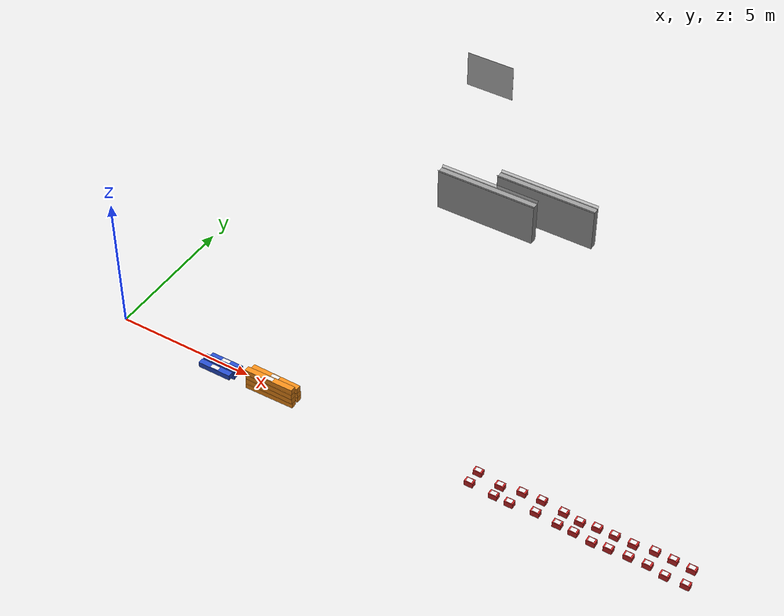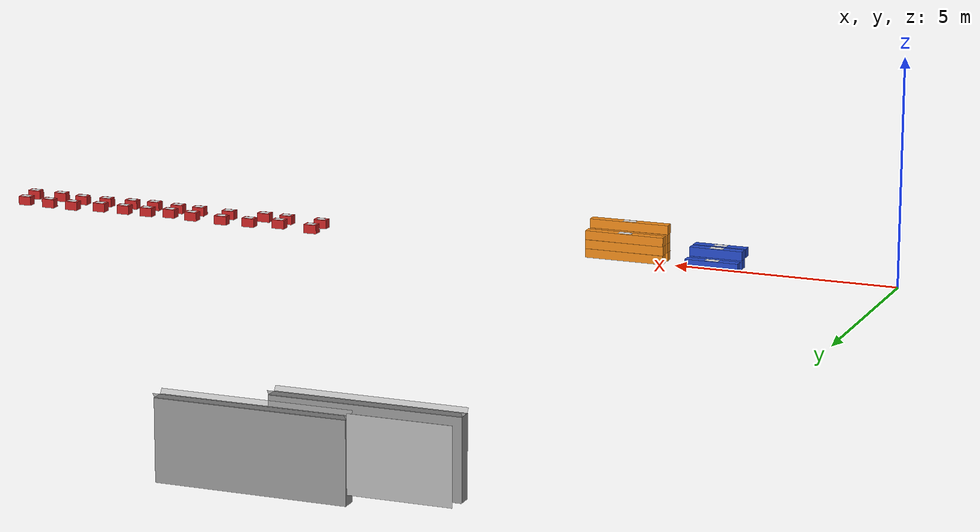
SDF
<sdf version="1.6">
 <world name="default">
  <model name="brick_blue_30">
   <static>1</static>
   <link name="link">
    <pose>0 0 0.1 0 -0 0</pose>
    <inertial>
     <mass>1.5</mass>
     <inertia>
      <ixx>0.00252984</ixx>
      <ixy>0</ixy>
      <ixz>0</ixz>
      <iyy>0.046802</iyy>
      <iyz>0</iyz>
      <izz>0.046802</izz>
     </inertia>
    </inertial>
    <visual name="main_box">
     <geometry><box><size>1.2 0.2 0.2</size></box></geometry>
     <material>
      <script><uri>file://media/materials/scripts/gazebo.material</uri><name>Gazebo/Blue</name></script>
     </material>
    </visual>
    <visual name="white_plate">
     <pose>0 0 0.1 0 -0 0</pose>
     <geometry><box><size>0.3 0.15 0.006</size></box></geometry>
     <material>
      <script><uri>file://media/materials/scripts/gazebo.material</uri><name>Gazebo/White</name></script>
     </material>
    </visual>
    <collision name="collision"><geometry><box><size>1.2 0.2 0.2</size></box></geometry></collision>
   </link>
   <pose>4.15925 -0.002355 0 0 -0 0.003169</pose>
  </model>
  <model name="brick_blue_31">
   <static>1</static>
   <link name="link">
    <pose>0 0 0.1 0 -0 0</pose>
    <inertial>
     <mass>1.5</mass>
     <inertia>
      <ixx>0.00252984</ixx>
      <ixy>0</ixy>
      <ixz>0</ixz>
      <iyy>0.046802</iyy>
      <iyz>0</iyz>
      <izz>0.046802</izz>
     </inertia>
    </inertial>
    <visual name="main_box">
     <geometry><box><size>1.2 0.2 0.2</size></box></geometry>
     <material>
      <script><uri>file://media/materials/scripts/gazebo.material</uri><name>Gazebo/Blue</name></script>
     </material>
    </visual>
    <visual name="white_plate">
     <pose>0 0 0.1 0 -0 0</pose>
     <geometry><box><size>0.3 0.15 0.006</size></box></geometry>
     <material>
      <script><uri>file://media/materials/scripts/gazebo.material</uri><name>Gazebo/White</name></script>
     </material>
    </visual>
    <collision name="collision"><geometry><box><size>1.2 0.2 0.2</size></box></geometry></collision>
   </link>
   <pose>4.15925 -0.317438 0 0 -0 0.012274</pose>
  </model>
  <model name="brick_blue_32">
   <static>1</static>
   <link name="link">
    <pose>0 0 0.1 0 -0 0</pose>
    <inertial>
     <mass>1.5</mass>
     <inertia>
      <ixx>0.00252984</ixx>
      <ixy>0</ixy>
      <ixz>0</ixz>
      <iyy>0.046802</iyy>
      <iyz>0</iyz>
      <izz>0.046802</izz>
     </inertia>
    </inertial>
    <visual name="main_box">
     <geometry><box><size>1.2 0.2 0.2</size></box></geometry>
     <material>
      <script><uri>file://media/materials/scripts/gazebo.material</uri><name>Gazebo/Blue</name></script>
     </material>
    </visual>
    <visual name="white_plate">
     <pose>0 0 0.1 0 -0 0</pose>
     <geometry><box><size>0.3 0.15 0.006</size></box></geometry>
     <material>
      <script><uri>file://media/materials/scripts/gazebo.material</uri><name>Gazebo/White</name></script>
     </material>
    </visual>
    <collision name="collision"><geometry><box><size>1.2 0.2 0.2</size></box></geometry></collision>
   </link>
   <pose>4.15925 -0.310888 0.202 0 0 -0.005419</pose>
  </model>
  <model name="brick_blue_34">
   <static>1</static>
   <link name="link">
    <pose>0 0 0.1 0 -0 0</pose>
    <inertial>
     <mass>1.5</mass>
     <inertia>
      <ixx>0.00252984</ixx>
      <ixy>0</ixy>
      <ixz>0</ixz>
      <iyy>0.046802</iyy>
      <iyz>0</iyz>
      <izz>0.046802</izz>
     </inertia>
    </inertial>
    <visual name="main_box">
     <geometry><box><size>1.2 0.2 0.2</size></box></geometry>
     <material>
      <script><uri>file://media/materials/scripts/gazebo.material</uri><name>Gazebo/Blue</name></script>
     </material>
    </visual>
    <visual name="white_plate">
     <pose>0 0 0.1 0 -0 0</pose>
     <geometry><box><size>0.3 0.15 0.006</size></box></geometry>
     <material>
      <script><uri>file://media/materials/scripts/gazebo.material</uri><name>Gazebo/White</name></script>
     </material>
    </visual>
    <collision name="collision"><geometry><box><size>1.2 0.2 0.2</size></box></geometry></collision>
   </link>
   <pose>4.15925 -0.575449 0.202 0 0 -0.001274</pose>
  </model>
  <model name="brick_orange_35">
   <static>1</static>
   <link name="link">
    <pose>0 0 0.1 0 -0 0</pose>
    <inertial>
     <mass>2</mass>
     <inertia>
      <ixx>0.00252984</ixx>
      <ixy>0</ixy>
      <ixz>0</ixz>
      <iyy>0.046802</iyy>
      <iyz>0</iyz>
      <izz>0.046802</izz>
     </inertia>
    </inertial>
    <visual name="main_box">
     <geometry><box><size>1.8 0.2 0.2</size></box></geometry>
     <material>
      <script><uri>file://media/materials/scripts/gazebo.material</uri><name>Gazebo/Orange</name></script>
     </material>
    </visual>
    <visual name="white_plate">
     <pose>0 0 0.1 0 -0 0</pose>
     <geometry><box><size>0.3 0.15 0.006</size></box></geometry>
     <material>
      <script><uri>file://media/materials/scripts/gazebo.material</uri><name>Gazebo/White</name></script>
     </material>
    </visual>
    <collision name="collision"><geometry><box><size>1.8 0.2 0.2</size></box></geometry></collision>
   </link>
   <pose>6.18963 -0.075045 0 0 0 -0.00406</pose>
  </model>
  <model name="brick_orange_36">
   <static>1</static>
   <link name="link">
    <pose>0 0 0.1 0 -0 0</pose>
    <inertial>
     <mass>2</mass>
     <inertia>
      <ixx>0.00252984</ixx>
      <ixy>0</ixy>
      <ixz>0</ixz>
      <iyy>0.046802</iyy>
      <iyz>0</iyz>
      <izz>0.046802</izz>
     </inertia>
    </inertial>
    <visual name="main_box">
     <geometry><box><size>1.8 0.2 0.2</size></box></geometry>
     <material>
      <script><uri>file://media/materials/scripts/gazebo.material</uri><name>Gazebo/Orange</name></script>
     </material>
    </visual>
    <visual name="white_plate">
     <pose>0 0 0.1 0 -0 0</pose>
     <geometry><box><size>0.3 0.15 0.006</size></box></geometry>
     <material>
      <script><uri>file://media/materials/scripts/gazebo.material</uri><name>Gazebo/White</name></script>
     </material>
    </visual>
    <collision name="collision"><geometry><box><size>1.8 0.2 0.2</size></box></geometry></collision>
   </link>
   <pose>6.18963 -0.075045 0.202 0 0 -0.001928</pose>
  </model>
  <model name="brick_orange_37">
   <static>1</static>
   <link name="link">
    <pose>0 0 0.1 0 -0 0</pose>
    <inertial>
     <mass>2</mass>
     <inertia>
      <ixx>0.00252984</ixx>
      <ixy>0</ixy>
      <ixz>0</ixz>
      <iyy>0.046802</iyy>
      <iyz>0</iyz>
      <izz>0.046802</izz>
     </inertia>
    </inertial>
    <visual name="main_box">
     <geometry><box><size>1.8 0.2 0.2</size></box></geometry>
     <material>
      <script><uri>file://media/materials/scripts/gazebo.material</uri><name>Gazebo/Orange</name></script>
     </material>
    </visual>
    <visual name="white_plate">
     <pose>0 0 0.1 0 -0 0</pose>
     <geometry><box><size>0.3 0.15 0.006</size></box></geometry>
     <material>
      <script><uri>file://media/materials/scripts/gazebo.material</uri><name>Gazebo/White</name></script>
     </material>
    </visual>
    <collision name="collision"><geometry><box><size>1.8 0.2 0.2</size></box></geometry></collision>
   </link>
   <pose>6.18963 -0.075045 0.404 0 0 -0.013869</pose>
  </model>
  <model name="brick_orange_38">
   <static>1</static>
   <link name="link">
    <pose>0 0 0.1 0 -0 0</pose>
    <inertial>
     <mass>2</mass>
     <inertia>
      <ixx>0.00252984</ixx>
      <ixy>0</ixy>
      <ixz>0</ixz>
      <iyy>0.046802</iyy>
      <iyz>0</iyz>
      <izz>0.046802</izz>
     </inertia>
    </inertial>
    <visual name="main_box">
     <geometry><box><size>1.8 0.2 0.2</size></box></geometry>
     <material>
      <script><uri>file://media/materials/scripts/gazebo.material</uri><name>Gazebo/Orange</name></script>
     </material>
    </visual>
    <visual name="white_plate">
     <pose>0 0 0.1 0 -0 0</pose>
     <geometry><box><size>0.3 0.15 0.006</size></box></geometry>
     <material>
      <script><uri>file://media/materials/scripts/gazebo.material</uri><name>Gazebo/White</name></script>
     </material>
    </visual>
    <collision name="collision"><geometry><box><size>1.8 0.2 0.2</size></box></geometry></collision>
   </link>
   <pose>6.18963 -0.392248 -0 0 -0 0.013414</pose>
  </model>
  <model name="brick_orange_39">
   <static>1</static>
   <link name="link">
    <pose>0 0 0.1 0 -0 0</pose>
    <inertial>
     <mass>2</mass>
     <inertia>
      <ixx>0.00252984</ixx>
      <ixy>0</ixy>
      <ixz>0</ixz>
      <iyy>0.046802</iyy>
      <iyz>0</iyz>
      <izz>0.046802</izz>
     </inertia>
    </inertial>
    <visual name="main_box">
     <geometry><box><size>1.8 0.2 0.2</size></box></geometry>
     <material>
      <script><uri>file://media/materials/scripts/gazebo.material</uri><name>Gazebo/Orange</name></script>
     </material>
    </visual>
    <visual name="white_plate">
     <pose>0 0 0.1 0 -0 0</pose>
     <geometry><box><size>0.3 0.15 0.006</size></box></geometry>
     <material>
      <script><uri>file://media/materials/scripts/gazebo.material</uri><name>Gazebo/White</name></script>
     </material>
    </visual>
    <collision name="collision"><geometry><box><size>1.8 0.2 0.2</size></box></geometry></collision>
   </link>
   <pose>6.18963 -0.3912 0.202 0 0 -0.009344</pose>
  </model>
  <model name="brick_orange_40">
   <static>1</static>
   <link name="link">
    <pose>0 0 0.1 0 -0 0</pose>
    <inertial>
     <mass>2</mass>
     <inertia>
      <ixx>0.00252984</ixx>
      <ixy>0</ixy>
      <ixz>0</ixz>
      <iyy>0.046802</iyy>
      <iyz>0</iyz>
      <izz>0.046802</izz>
     </inertia>
    </inertial>
    <visual name="main_box">
     <geometry><box><size>1.8 0.2 0.2</size></box></geometry>
     <material>
      <script><uri>file://media/materials/scripts/gazebo.material</uri><name>Gazebo/Orange</name></script>
     </material>
    </visual>
    <visual name="white_plate">
     <pose>0 0 0.1 0 -0 0</pose>
     <geometry><box><size>0.3 0.15 0.006</size></box></geometry>
     <material>
      <script><uri>file://media/materials/scripts/gazebo.material</uri><name>Gazebo/White</name></script>
     </material>
    </visual>
    <collision name="collision"><geometry><box><size>1.8 0.2 0.2</size></box></geometry></collision>
   </link>
   <pose>6.18963 -0.388297 0.404 0 0 -0.013664</pose>
  </model>
  <model name="brick_orange_41">
   <static>1</static>
   <link name="link">
    <pose>0 0 0.1 0 -0 0</pose>
    <inertial>
     <mass>2</mass>
     <inertia>
      <ixx>0.00252984</ixx>
      <ixy>0</ixy>
      <ixz>0</ixz>
      <iyy>0.046802</iyy>
      <iyz>0</iyz>
      <izz>0.046802</izz>
     </inertia>
    </inertial>
    <visual name="main_box">
     <geometry><box><size>1.8 0.2 0.2</size></box></geometry>
     <material>
      <script><uri>file://media/materials/scripts/gazebo.material</uri><name>Gazebo/Orange</name></script>
     </material>
    </visual>
    <visual name="white_plate">
     <pose>0 0 0.1 0 -0 0</pose>
     <geometry><box><size>0.3 0.15 0.006</size></box></geometry>
     <material>
      <script><uri>file://media/materials/scripts/gazebo.material</uri><name>Gazebo/White</name></script>
     </material>
    </visual>
    <collision name="collision"><geometry><box><size>1.8 0.2 0.2</size></box></geometry></collision>
   </link>
   <pose>6.18963 -0.387973 0.606 0 -0 0.01023</pose>
  </model>
  <model name="artificial_wall">
   <static>1</static>
   <link name="link">
    <pose>0 0 0.75 0 -0 0</pose>
    <inertial>
     <mass>0.5167</mass>
     <inertia>
      <ixx>0.000861167</ixx>
      <ixy>0</ixy>
      <ixz>0</ixz>
      <iyy>0.000861167</iyy>
      <iyz>0</iyz>
      <izz>0.000861167</izz>
     </inertia>
    </inertial>
    <collision name="collision">
     <geometry><box><size>2 0.01 1.5</size></box></geometry>
     <surface>
      <contact>
       <poissons_ratio>0.347</poissons_ratio>
       <elastic_modulus>8.8e+09</elastic_modulus>
       <ode><kp>100000</kp><kd>100</kd><max_vel>100</max_vel><min_depth>0.001</min_depth></ode>
      </contact>
      <friction>
       <torsional>
        <coefficient>1</coefficient>
        <use_patch_radius>0</use_patch_radius>
        <surface_radius>0.01</surface_radius>
       </torsional>
      </friction>
     </surface>
    </collision>
    <visual name="visual">
     <geometry><box><size>2 0.01 1.5</size></box></geometry>
     <material>
      <script>
       <uri>model://artificial_wall/scripts</uri>
       <uri>model://artificial_wall/materials/textures</uri>
       <name>ArtificialWall/Image</name>
      </script>
     </material>
    </visual>
   </link>
   <pose>4.15045 17.5798 0 0 -0 0</pose>
  </model>
  <model name="mbzirc_uav_assembly_wall_3">
   <static>1</static>
   <link name="link">
    <pose>0 0 0.85 0 -0 0</pose>
    <collision name="collision_wall"><geometry><box><size>4 0.3 1.7</size></box></geometry></collision>
    <visual name="visual_wall">
     <geometry><box><size>4 0.3 1.7</size></box></geometry>
     <material>
      <script>
       <uri>model://mbzirc_uav_assembly_wall/materials/scripts</uri>
       <uri>model://mbzirc_uav_assembly_wall/materials/textures</uri>
       <name>vrc/grey_wall</name>
      </script>
     </material>
    </visual>
    <visual name="visual_top_plate">
     <pose>0 0 0.85 0 -0 0</pose>
     <geometry><box><size>4 0.3 0.005</size></box></geometry>
     <material>
      <script><name>Gazebo/Grey</name><uri>file://media/materials/scripts/gazebo.material</uri></script>
     </material>
    </visual>
    <collision name="collision_front_channel">
     <pose>0 0.158 0.9 -0.643 0 0</pose>
     <geometry><box><size>4 0.005 0.125</size></box></geometry>
    </collision>
    <visual name="visual_front_channel">
     <pose>0 0.158 0.9 -0.643 0 0</pose>
     <geometry><box><size>4 0.005 0.125</size></box></geometry>
     <material>
      <script><name>Gazebo/GreyTransparent</name><uri>file://media/materials/scripts/gazebo.material</uri></script>
     </material>
    </visual>
    <collision name="collision_back_channel">
     <pose>0 -0.158 0.9 0.643 -0 0</pose>
     <geometry><box><size>4 0.005 0.125</size></box></geometry>
    </collision>
    <visual name="visual_back_channel">
     <pose>0 -0.158 0.9 0.643 -0 0</pose>
     <geometry><box><size>4 0.005 0.125</size></box></geometry>
     <material>
      <script><name>Gazebo/GreyTransparent</name><uri>file://media/materials/scripts/gazebo.material</uri></script>
     </material>
    </visual>
   </link>
   <pose>8.95965 13.3483 -1.67233 0 -0 0</pose>
  </model>
  <model name="mbzirc_uav_assembly_wall_4">
   <static>1</static>
   <link name="link">
    <pose>0 0 0.85 0 -0 0</pose>
    <collision name="collision_wall"><geometry><box><size>4 0.3 1.7</size></box></geometry></collision>
    <visual name="visual_wall">
     <geometry><box><size>4 0.3 1.7</size></box></geometry>
     <material>
      <script>
       <uri>model://mbzirc_uav_assembly_wall/materials/scripts</uri>
       <uri>model://mbzirc_uav_assembly_wall/materials/textures</uri>
       <name>vrc/grey_wall</name>
      </script>
     </material>
    </visual>
    <visual name="visual_top_plate">
     <pose>0 0 0.85 0 -0 0</pose>
     <geometry><box><size>4 0.3 0.005</size></box></geometry>
     <material>
      <script><name>Gazebo/Grey</name><uri>file://media/materials/scripts/gazebo.material</uri></script>
     </material>
    </visual>
    <collision name="collision_front_channel">
     <pose>0 0.158 0.9 -0.643 0 0</pose>
     <geometry><box><size>4 0.005 0.125</size></box></geometry>
    </collision>
    <visual name="visual_front_channel">
     <pose>0 0.158 0.9 -0.643 0 0</pose>
     <geometry><box><size>4 0.005 0.125</size></box></geometry>
     <material>
      <script><name>Gazebo/GreyTransparent</name><uri>file://media/materials/scripts/gazebo.material</uri></script>
     </material>
    </visual>
    <collision name="collision_back_channel">
     <pose>0 -0.158 0.9 0.643 -0 0</pose>
     <geometry><box><size>4 0.005 0.125</size></box></geometry>
    </collision>
    <visual name="visual_back_channel">
     <pose>0 -0.158 0.9 0.643 -0 0</pose>
     <geometry><box><size>4 0.005 0.125</size></box></geometry>
     <material>
      <script><name>Gazebo/GreyTransparent</name><uri>file://media/materials/scripts/gazebo.material</uri></script>
     </material>
    </visual>
   </link>
   <pose>6.9734 12.4316 -1.64477 0 -0 0</pose>
  </model>
  <model name="mbzirc_red_brick">
   <static>0</static>
   <link name="link">
    <pose>0 0 0.1 0 -0 0</pose>
    <inertial>
     <mass>0.7</mass>
     <inertia>
      <ixx>0.004648</ixx>
      <ixy>0</ixy>
      <ixz>0</ixz>
      <iyy>0.007553</iyy>
      <iyz>0</iyz>
      <izz>0.007553</izz>
     </inertia>
    </inertial>
    <visual name="main_box">
     <geometry><box><size>0.3 0.2 0.2</size></box></geometry>
     <material>
      <script><uri>file://media/materials/scripts/gazebo.material</uri><name>Gazebo/Red</name></script>
     </material>
    </visual>
    <visual name="white_plate">
     <pose>0 0 0.1 0 -0 0</pose>
     <geometry><box><size>0.2 0.15 0.006</size></box></geometry>
     <material>
      <script><uri>file://media/materials/scripts/gazebo.material</uri><name>Gazebo/White</name></script>
     </material>
    </visual>
    <collision name="collision"><geometry><box><size>0.3 0.2 0.2</size></box></geometry></collision>
   </link>
   <pose>20.9271 -0.404197 0 0.000114 -6e-06 3e-06</pose>
  </model>
  <model name="mbzirc_red_brick_0">
   <static>0</static>
   <link name="link">
    <pose>0 0 0.1 0 -0 0</pose>
    <inertial>
     <mass>0.7</mass>
     <inertia>
      <ixx>0.004648</ixx>
      <ixy>0</ixy>
      <ixz>0</ixz>
      <iyy>0.007553</iyy>
      <iyz>0</iyz>
      <izz>0.007553</izz>
     </inertia>
    </inertial>
    <visual name="main_box">
     <geometry><box><size>0.3 0.2 0.2</size></box></geometry>
     <material>
      <script><uri>file://media/materials/scripts/gazebo.material</uri><name>Gazebo/Red</name></script>
     </material>
    </visual>
    <visual name="white_plate">
     <pose>0 0 0.1 0 -0 0</pose>
     <geometry><box><size>0.2 0.15 0.006</size></box></geometry>
     <material>
      <script><uri>file://media/materials/scripts/gazebo.material</uri><name>Gazebo/White</name></script>
     </material>
    </visual>
    <collision name="collision"><geometry><box><size>0.3 0.2 0.2</size></box></geometry></collision>
   </link>
   <pose>13.5604 -0.287668 -5.4e-05 0.0005 -3e-06 0</pose>
  </model>
  <model name="mbzirc_red_brick_1">
   <static>0</static>
   <link name="link">
    <pose>0 0 0.1 0 -0 0</pose>
    <inertial>
     <mass>0.7</mass>
     <inertia>
      <ixx>0.004648</ixx>
      <ixy>0</ixy>
      <ixz>0</ixz>
      <iyy>0.007553</iyy>
      <iyz>0</iyz>
      <izz>0.007553</izz>
     </inertia>
    </inertial>
    <visual name="main_box">
     <geometry><box><size>0.3 0.2 0.2</size></box></geometry>
     <material>
      <script><uri>file://media/materials/scripts/gazebo.material</uri><name>Gazebo/Red</name></script>
     </material>
    </visual>
    <visual name="white_plate">
     <pose>0 0 0.1 0 -0 0</pose>
     <geometry><box><size>0.2 0.15 0.006</size></box></geometry>
     <material>
      <script><uri>file://media/materials/scripts/gazebo.material</uri><name>Gazebo/White</name></script>
     </material>
    </visual>
    <collision name="collision"><geometry><box><size>0.3 0.2 0.2</size></box></geometry></collision>
   </link>
   <pose>19.6472 -0.316008 0 0.000114 -6e-06 3e-06</pose>
  </model>
  <model name="mbzirc_red_brick_2">
   <static>0</static>
   <link name="link">
    <pose>0 0 0.1 0 -0 0</pose>
    <inertial>
     <mass>0.7</mass>
     <inertia>
      <ixx>0.004648</ixx>
      <ixy>0</ixy>
      <ixz>0</ixz>
      <iyy>0.007553</iyy>
      <iyz>0</iyz>
      <izz>0.007553</izz>
     </inertia>
    </inertial>
    <visual name="main_box">
     <geometry><box><size>0.3 0.2 0.2</size></box></geometry>
     <material>
      <script><uri>file://media/materials/scripts/gazebo.material</uri><name>Gazebo/Red</name></script>
     </material>
    </visual>
    <visual name="white_plate">
     <pose>0 0 0.1 0 -0 0</pose>
     <geometry><box><size>0.2 0.15 0.006</size></box></geometry>
     <material>
      <script><uri>file://media/materials/scripts/gazebo.material</uri><name>Gazebo/White</name></script>
     </material>
    </visual>
    <collision name="collision"><geometry><box><size>0.3 0.2 0.2</size></box></geometry></collision>
   </link>
   <pose>20.2525 -0.416958 0 -0.000114 -6e-06 -2e-06</pose>
  </model>
  <model name="mbzirc_red_brick_3">
   <static>0</static>
   <link name="link">
    <pose>0 0 0.1 0 -0 0</pose>
    <inertial>
     <mass>0.7</mass>
     <inertia>
      <ixx>0.004648</ixx>
      <ixy>0</ixy>
      <ixz>0</ixz>
      <iyy>0.007553</iyy>
      <iyz>0</iyz>
      <izz>0.007553</izz>
     </inertia>
    </inertial>
    <visual name="main_box">
     <geometry><box><size>0.3 0.2 0.2</size></box></geometry>
     <material>
      <script><uri>file://media/materials/scripts/gazebo.material</uri><name>Gazebo/Red</name></script>
     </material>
    </visual>
    <visual name="white_plate">
     <pose>0 0 0.1 0 -0 0</pose>
     <geometry><box><size>0.2 0.15 0.006</size></box></geometry>
     <material>
      <script><uri>file://media/materials/scripts/gazebo.material</uri><name>Gazebo/White</name></script>
     </material>
    </visual>
    <collision name="collision"><geometry><box><size>0.3 0.2 0.2</size></box></geometry></collision>
   </link>
   <pose>19.0268 -0.32892 -5.4e-05 0.0005 -3e-06 0</pose>
  </model>
  <model name="mbzirc_red_brick_4">
   <static>0</static>
   <link name="link">
    <pose>0 0 0.1 0 -0 0</pose>
    <inertial>
     <mass>0.7</mass>
     <inertia>
      <ixx>0.004648</ixx>
      <ixy>0</ixy>
      <ixz>0</ixz>
      <iyy>0.007553</iyy>
      <iyz>0</iyz>
      <izz>0.007553</izz>
     </inertia>
    </inertial>
    <visual name="main_box">
     <geometry><box><size>0.3 0.2 0.2</size></box></geometry>
     <material>
      <script><uri>file://media/materials/scripts/gazebo.material</uri><name>Gazebo/Red</name></script>
     </material>
    </visual>
    <visual name="white_plate">
     <pose>0 0 0.1 0 -0 0</pose>
     <geometry><box><size>0.2 0.15 0.006</size></box></geometry>
     <material>
      <script><uri>file://media/materials/scripts/gazebo.material</uri><name>Gazebo/White</name></script>
     </material>
    </visual>
    <collision name="collision"><geometry><box><size>0.3 0.2 0.2</size></box></geometry></collision>
   </link>
   <pose>18.3857 -0.37056 -5.4e-05 -0.0005 -3e-06 1e-06</pose>
  </model>
  <model name="mbzirc_red_brick_5">
   <static>0</static>
   <link name="link">
    <pose>0 0 0.1 0 -0 0</pose>
    <inertial>
     <mass>0.7</mass>
     <inertia>
      <ixx>0.004648</ixx>
      <ixy>0</ixy>
      <ixz>0</ixz>
      <iyy>0.007553</iyy>
      <iyz>0</iyz>
      <izz>0.007553</izz>
     </inertia>
    </inertial>
    <visual name="main_box">
     <geometry><box><size>0.3 0.2 0.2</size></box></geometry>
     <material>
      <script><uri>file://media/materials/scripts/gazebo.material</uri><name>Gazebo/Red</name></script>
     </material>
    </visual>
    <visual name="white_plate">
     <pose>0 0 0.1 0 -0 0</pose>
     <geometry><box><size>0.2 0.15 0.006</size></box></geometry>
     <material>
      <script><uri>file://media/materials/scripts/gazebo.material</uri><name>Gazebo/White</name></script>
     </material>
    </visual>
    <collision name="collision"><geometry><box><size>0.3 0.2 0.2</size></box></geometry></collision>
   </link>
   <pose>17.8369 -0.416907 0 0.000114 -6e-06 3e-06</pose>
  </model>
  <model name="mbzirc_red_brick_6">
   <static>0</static>
   <link name="link">
    <pose>0 0 0.1 0 -0 0</pose>
    <inertial>
     <mass>0.7</mass>
     <inertia>
      <ixx>0.004648</ixx>
      <ixy>0</ixy>
      <ixz>0</ixz>
      <iyy>0.007553</iyy>
      <iyz>0</iyz>
      <izz>0.007553</izz>
     </inertia>
    </inertial>
    <visual name="main_box">
     <geometry><box><size>0.3 0.2 0.2</size></box></geometry>
     <material>
      <script><uri>file://media/materials/scripts/gazebo.material</uri><name>Gazebo/Red</name></script>
     </material>
    </visual>
    <visual name="white_plate">
     <pose>0 0 0.1 0 -0 0</pose>
     <geometry><box><size>0.2 0.15 0.006</size></box></geometry>
     <material>
      <script><uri>file://media/materials/scripts/gazebo.material</uri><name>Gazebo/White</name></script>
     </material>
    </visual>
    <collision name="collision"><geometry><box><size>0.3 0.2 0.2</size></box></geometry></collision>
   </link>
   <pose>17.202 -0.356728 -5.4e-05 -0.0005 -3e-06 1e-06</pose>
  </model>
  <model name="mbzirc_red_brick_7">
   <static>0</static>
   <link name="link">
    <pose>0 0 0.1 0 -0 0</pose>
    <inertial>
     <mass>0.7</mass>
     <inertia>
      <ixx>0.004648</ixx>
      <ixy>0</ixy>
      <ixz>0</ixz>
      <iyy>0.007553</iyy>
      <iyz>0</iyz>
      <izz>0.007553</izz>
     </inertia>
    </inertial>
    <visual name="main_box">
     <geometry><box><size>0.3 0.2 0.2</size></box></geometry>
     <material>
      <script><uri>file://media/materials/scripts/gazebo.material</uri><name>Gazebo/Red</name></script>
     </material>
    </visual>
    <visual name="white_plate">
     <pose>0 0 0.1 0 -0 0</pose>
     <geometry><box><size>0.2 0.15 0.006</size></box></geometry>
     <material>
      <script><uri>file://media/materials/scripts/gazebo.material</uri><name>Gazebo/White</name></script>
     </material>
    </visual>
    <collision name="collision"><geometry><box><size>0.3 0.2 0.2</size></box></geometry></collision>
   </link>
   <pose>16.6471 -0.335854 -5.4e-05 -0.0005 -3e-06 1e-06</pose>
  </model>
  <model name="mbzirc_red_brick_8">
   <static>0</static>
   <link name="link">
    <pose>0 0 0.1 0 -0 0</pose>
    <inertial>
     <mass>0.7</mass>
     <inertia>
      <ixx>0.004648</ixx>
      <ixy>0</ixy>
      <ixz>0</ixz>
      <iyy>0.007553</iyy>
      <iyz>0</iyz>
      <izz>0.007553</izz>
     </inertia>
    </inertial>
    <visual name="main_box">
     <geometry><box><size>0.3 0.2 0.2</size></box></geometry>
     <material>
      <script><uri>file://media/materials/scripts/gazebo.material</uri><name>Gazebo/Red</name></script>
     </material>
    </visual>
    <visual name="white_plate">
     <pose>0 0 0.1 0 -0 0</pose>
     <geometry><box><size>0.2 0.15 0.006</size></box></geometry>
     <material>
      <script><uri>file://media/materials/scripts/gazebo.material</uri><name>Gazebo/White</name></script>
     </material>
    </visual>
    <collision name="collision"><geometry><box><size>0.3 0.2 0.2</size></box></geometry></collision>
   </link>
   <pose>15.864 -0.27625 0 -0.000114 -6e-06 -2e-06</pose>
  </model>
  <model name="mbzirc_red_brick_9">
   <static>0</static>
   <link name="link">
    <pose>0 0 0.1 0 -0 0</pose>
    <inertial>
     <mass>0.7</mass>
     <inertia>
      <ixx>0.004648</ixx>
      <ixy>0</ixy>
      <ixz>0</ixz>
      <iyy>0.007553</iyy>
      <iyz>0</iyz>
      <izz>0.007553</izz>
     </inertia>
    </inertial>
    <visual name="main_box">
     <geometry><box><size>0.3 0.2 0.2</size></box></geometry>
     <material>
      <script><uri>file://media/materials/scripts/gazebo.material</uri><name>Gazebo/Red</name></script>
     </material>
    </visual>
    <visual name="white_plate">
     <pose>0 0 0.1 0 -0 0</pose>
     <geometry><box><size>0.2 0.15 0.006</size></box></geometry>
     <material>
      <script><uri>file://media/materials/scripts/gazebo.material</uri><name>Gazebo/White</name></script>
     </material>
    </visual>
    <collision name="collision"><geometry><box><size>0.3 0.2 0.2</size></box></geometry></collision>
   </link>
   <pose>15.0077 -0.36417 -5.4e-05 0.0005 -3e-06 0</pose>
  </model>
  <model name="mbzirc_red_brick_10">
   <static>0</static>
   <link name="link">
    <pose>0 0 0.1 0 -0 0</pose>
    <inertial>
     <mass>0.7</mass>
     <inertia>
      <ixx>0.004648</ixx>
      <ixy>0</ixy>
      <ixz>0</ixz>
      <iyy>0.007553</iyy>
      <iyz>0</iyz>
      <izz>0.007553</izz>
     </inertia>
    </inertial>
    <visual name="main_box">
     <geometry><box><size>0.3 0.2 0.2</size></box></geometry>
     <material>
      <script><uri>file://media/materials/scripts/gazebo.material</uri><name>Gazebo/Red</name></script>
     </material>
    </visual>
    <visual name="white_plate">
     <pose>0 0 0.1 0 -0 0</pose>
     <geometry><box><size>0.2 0.15 0.006</size></box></geometry>
     <material>
      <script><uri>file://media/materials/scripts/gazebo.material</uri><name>Gazebo/White</name></script>
     </material>
    </visual>
    <collision name="collision"><geometry><box><size>0.3 0.2 0.2</size></box></geometry></collision>
   </link>
   <pose>14.4466 -0.351061 -5.4e-05 0.0005 -3e-06 0</pose>
  </model>
  <model name="mbzirc_red_brick_11">
   <static>0</static>
   <link name="link">
    <pose>0 0 0.1 0 -0 0</pose>
    <inertial>
     <mass>0.7</mass>
     <inertia>
      <ixx>0.004648</ixx>
      <ixy>0</ixy>
      <ixz>0</ixz>
      <iyy>0.007553</iyy>
      <iyz>0</iyz>
      <izz>0.007553</izz>
     </inertia>
    </inertial>
    <visual name="main_box">
     <geometry><box><size>0.3 0.2 0.2</size></box></geometry>
     <material>
      <script><uri>file://media/materials/scripts/gazebo.material</uri><name>Gazebo/Red</name></script>
     </material>
    </visual>
    <visual name="white_plate">
     <pose>0 0 0.1 0 -0 0</pose>
     <geometry><box><size>0.2 0.15 0.006</size></box></geometry>
     <material>
      <script><uri>file://media/materials/scripts/gazebo.material</uri><name>Gazebo/White</name></script>
     </material>
    </visual>
    <collision name="collision"><geometry><box><size>0.3 0.2 0.2</size></box></geometry></collision>
   </link>
   <pose>20.8407 0.216029 0 0.000114 -6e-06 3e-06</pose>
  </model>
  <model name="mbzirc_red_brick_12">
   <static>0</static>
   <link name="link">
    <pose>0 0 0.1 0 -0 0</pose>
    <inertial>
     <mass>0.7</mass>
     <inertia>
      <ixx>0.004648</ixx>
      <ixy>0</ixy>
      <ixz>0</ixz>
      <iyy>0.007553</iyy>
      <iyz>0</iyz>
      <izz>0.007553</izz>
     </inertia>
    </inertial>
    <visual name="main_box">
     <geometry><box><size>0.3 0.2 0.2</size></box></geometry>
     <material>
      <script><uri>file://media/materials/scripts/gazebo.material</uri><name>Gazebo/Red</name></script>
     </material>
    </visual>
    <visual name="white_plate">
     <pose>0 0 0.1 0 -0 0</pose>
     <geometry><box><size>0.2 0.15 0.006</size></box></geometry>
     <material>
      <script><uri>file://media/materials/scripts/gazebo.material</uri><name>Gazebo/White</name></script>
     </material>
    </visual>
    <collision name="collision"><geometry><box><size>0.3 0.2 0.2</size></box></geometry></collision>
   </link>
   <pose>20.2224 0.245343 0 -0.000114 -6e-06 -2e-06</pose>
  </model>
  <model name="mbzirc_red_brick_13">
   <static>0</static>
   <link name="link">
    <pose>0 0 0.1 0 -0 0</pose>
    <inertial>
     <mass>0.7</mass>
     <inertia>
      <ixx>0.004648</ixx>
      <ixy>0</ixy>
      <ixz>0</ixz>
      <iyy>0.007553</iyy>
      <iyz>0</iyz>
      <izz>0.007553</izz>
     </inertia>
    </inertial>
    <visual name="main_box">
     <geometry><box><size>0.3 0.2 0.2</size></box></geometry>
     <material>
      <script><uri>file://media/materials/scripts/gazebo.material</uri><name>Gazebo/Red</name></script>
     </material>
    </visual>
    <visual name="white_plate">
     <pose>0 0 0.1 0 -0 0</pose>
     <geometry><box><size>0.2 0.15 0.006</size></box></geometry>
     <material>
      <script><uri>file://media/materials/scripts/gazebo.material</uri><name>Gazebo/White</name></script>
     </material>
    </visual>
    <collision name="collision"><geometry><box><size>0.3 0.2 0.2</size></box></geometry></collision>
   </link>
   <pose>19.6143 0.257405 -5.4e-05 -0.0005 -3e-06 1e-06</pose>
  </model>
  <model name="mbzirc_red_brick_14">
   <static>0</static>
   <link name="link">
    <pose>0 0 0.1 0 -0 0</pose>
    <inertial>
     <mass>0.7</mass>
     <inertia>
      <ixx>0.004648</ixx>
      <ixy>0</ixy>
      <ixz>0</ixz>
      <iyy>0.007553</iyy>
      <iyz>0</iyz>
      <izz>0.007553</izz>
     </inertia>
    </inertial>
    <visual name="main_box">
     <geometry><box><size>0.3 0.2 0.2</size></box></geometry>
     <material>
      <script><uri>file://media/materials/scripts/gazebo.material</uri><name>Gazebo/Red</name></script>
     </material>
    </visual>
    <visual name="white_plate">
     <pose>0 0 0.1 0 -0 0</pose>
     <geometry><box><size>0.2 0.15 0.006</size></box></geometry>
     <material>
      <script><uri>file://media/materials/scripts/gazebo.material</uri><name>Gazebo/White</name></script>
     </material>
    </visual>
    <collision name="collision"><geometry><box><size>0.3 0.2 0.2</size></box></geometry></collision>
   </link>
   <pose>18.9436 0.164513 -5.4e-05 -0.0005 -3e-06 1e-06</pose>
  </model>
  <model name="mbzirc_red_brick_15">
   <static>0</static>
   <link name="link">
    <pose>0 0 0.1 0 -0 0</pose>
    <inertial>
     <mass>0.7</mass>
     <inertia>
      <ixx>0.004648</ixx>
      <ixy>0</ixy>
      <ixz>0</ixz>
      <iyy>0.007553</iyy>
      <iyz>0</iyz>
      <izz>0.007553</izz>
     </inertia>
    </inertial>
    <visual name="main_box">
     <geometry><box><size>0.3 0.2 0.2</size></box></geometry>
     <material>
      <script><uri>file://media/materials/scripts/gazebo.material</uri><name>Gazebo/Red</name></script>
     </material>
    </visual>
    <visual name="white_plate">
     <pose>0 0 0.1 0 -0 0</pose>
     <geometry><box><size>0.2 0.15 0.006</size></box></geometry>
     <material>
      <script><uri>file://media/materials/scripts/gazebo.material</uri><name>Gazebo/White</name></script>
     </material>
    </visual>
    <collision name="collision"><geometry><box><size>0.3 0.2 0.2</size></box></geometry></collision>
   </link>
   <pose>18.3231 0.165438 0 -0.000114 -6e-06 -2e-06</pose>
  </model>
  <model name="mbzirc_red_brick_16">
   <static>0</static>
   <link name="link">
    <pose>0 0 0.1 0 -0 0</pose>
    <inertial>
     <mass>0.7</mass>
     <inertia>
      <ixx>0.004648</ixx>
      <ixy>0</ixy>
      <ixz>0</ixz>
      <iyy>0.007553</iyy>
      <iyz>0</iyz>
      <izz>0.007553</izz>
     </inertia>
    </inertial>
    <visual name="main_box">
     <geometry><box><size>0.3 0.2 0.2</size></box></geometry>
     <material>
      <script><uri>file://media/materials/scripts/gazebo.material</uri><name>Gazebo/Red</name></script>
     </material>
    </visual>
    <visual name="white_plate">
     <pose>0 0 0.1 0 -0 0</pose>
     <geometry><box><size>0.2 0.15 0.006</size></box></geometry>
     <material>
      <script><uri>file://media/materials/scripts/gazebo.material</uri><name>Gazebo/White</name></script>
     </material>
    </visual>
    <collision name="collision"><geometry><box><size>0.3 0.2 0.2</size></box></geometry></collision>
   </link>
   <pose>17.7347 0.164944 -5.4e-05 -0.0005 -3e-06 1e-06</pose>
  </model>
  <model name="mbzirc_red_brick_17">
   <static>0</static>
   <link name="link">
    <pose>0 0 0.1 0 -0 0</pose>
    <inertial>
     <mass>0.7</mass>
     <inertia>
      <ixx>0.004648</ixx>
      <ixy>0</ixy>
      <ixz>0</ixz>
      <iyy>0.007553</iyy>
      <iyz>0</iyz>
      <izz>0.007553</izz>
     </inertia>
    </inertial>
    <visual name="main_box">
     <geometry><box><size>0.3 0.2 0.2</size></box></geometry>
     <material>
      <script><uri>file://media/materials/scripts/gazebo.material</uri><name>Gazebo/Red</name></script>
     </material>
    </visual>
    <visual name="white_plate">
     <pose>0 0 0.1 0 -0 0</pose>
     <geometry><box><size>0.2 0.15 0.006</size></box></geometry>
     <material>
      <script><uri>file://media/materials/scripts/gazebo.material</uri><name>Gazebo/White</name></script>
     </material>
    </visual>
    <collision name="collision"><geometry><box><size>0.3 0.2 0.2</size></box></geometry></collision>
   </link>
   <pose>17.1847 0.097572 0 -0.000114 -6e-06 -2e-06</pose>
  </model>
  <model name="mbzirc_red_brick_18">
   <static>0</static>
   <link name="link">
    <pose>0 0 0.1 0 -0 0</pose>
    <inertial>
     <mass>0.7</mass>
     <inertia>
      <ixx>0.004648</ixx>
      <ixy>0</ixy>
      <ixz>0</ixz>
      <iyy>0.007553</iyy>
      <iyz>0</iyz>
      <izz>0.007553</izz>
     </inertia>
    </inertial>
    <visual name="main_box">
     <geometry><box><size>0.3 0.2 0.2</size></box></geometry>
     <material>
      <script><uri>file://media/materials/scripts/gazebo.material</uri><name>Gazebo/Red</name></script>
     </material>
    </visual>
    <visual name="white_plate">
     <pose>0 0 0.1 0 -0 0</pose>
     <geometry><box><size>0.2 0.15 0.006</size></box></geometry>
     <material>
      <script><uri>file://media/materials/scripts/gazebo.material</uri><name>Gazebo/White</name></script>
     </material>
    </visual>
    <collision name="collision"><geometry><box><size>0.3 0.2 0.2</size></box></geometry></collision>
   </link>
   <pose>16.598 0.170198 -5.4e-05 0.0005 -3e-06 0</pose>
  </model>
  <model name="mbzirc_red_brick_19">
   <static>0</static>
   <link name="link">
    <pose>0 0 0.1 0 -0 0</pose>
    <inertial>
     <mass>0.7</mass>
     <inertia>
      <ixx>0.004648</ixx>
      <ixy>0</ixy>
      <ixz>0</ixz>
      <iyy>0.007553</iyy>
      <iyz>0</iyz>
      <izz>0.007553</izz>
     </inertia>
    </inertial>
    <visual name="main_box">
     <geometry><box><size>0.3 0.2 0.2</size></box></geometry>
     <material>
      <script><uri>file://media/materials/scripts/gazebo.material</uri><name>Gazebo/Red</name></script>
     </material>
    </visual>
    <visual name="white_plate">
     <pose>0 0 0.1 0 -0 0</pose>
     <geometry><box><size>0.2 0.15 0.006</size></box></geometry>
     <material>
      <script><uri>file://media/materials/scripts/gazebo.material</uri><name>Gazebo/White</name></script>
     </material>
    </visual>
    <collision name="collision"><geometry><box><size>0.3 0.2 0.2</size></box></geometry></collision>
   </link>
   <pose>15.8091 0.244183 -5.4e-05 -0.0005 -3e-06 1e-06</pose>
  </model>
  <model name="mbzirc_red_brick_20">
   <static>0</static>
   <link name="link">
    <pose>0 0 0.1 0 -0 0</pose>
    <inertial>
     <mass>0.7</mass>
     <inertia>
      <ixx>0.004648</ixx>
      <ixy>0</ixy>
      <ixz>0</ixz>
      <iyy>0.007553</iyy>
      <iyz>0</iyz>
      <izz>0.007553</izz>
     </inertia>
    </inertial>
    <visual name="main_box">
     <geometry><box><size>0.3 0.2 0.2</size></box></geometry>
     <material>
      <script><uri>file://media/materials/scripts/gazebo.material</uri><name>Gazebo/Red</name></script>
     </material>
    </visual>
    <visual name="white_plate">
     <pose>0 0 0.1 0 -0 0</pose>
     <geometry><box><size>0.2 0.15 0.006</size></box></geometry>
     <material>
      <script><uri>file://media/materials/scripts/gazebo.material</uri><name>Gazebo/White</name></script>
     </material>
    </visual>
    <collision name="collision"><geometry><box><size>0.3 0.2 0.2</size></box></geometry></collision>
   </link>
   <pose>15.1364 0.210016 0 -0.000114 -6e-06 -2e-06</pose>
  </model>
  <model name="mbzirc_red_brick_21">
   <static>0</static>
   <link name="link">
    <pose>0 0 0.1 0 -0 0</pose>
    <inertial>
     <mass>0.7</mass>
     <inertia>
      <ixx>0.004648</ixx>
      <ixy>0</ixy>
      <ixz>0</ixz>
      <iyy>0.007553</iyy>
      <iyz>0</iyz>
      <izz>0.007553</izz>
     </inertia>
    </inertial>
    <visual name="main_box">
     <geometry><box><size>0.3 0.2 0.2</size></box></geometry>
     <material>
      <script><uri>file://media/materials/scripts/gazebo.material</uri><name>Gazebo/Red</name></script>
     </material>
    </visual>
    <visual name="white_plate">
     <pose>0 0 0.1 0 -0 0</pose>
     <geometry><box><size>0.2 0.15 0.006</size></box></geometry>
     <material>
      <script><uri>file://media/materials/scripts/gazebo.material</uri><name>Gazebo/White</name></script>
     </material>
    </visual>
    <collision name="collision"><geometry><box><size>0.3 0.2 0.2</size></box></geometry></collision>
   </link>
   <pose>14.433 0.08923 0 0.000114 -6e-06 3e-06</pose>
  </model>
  <model name="mbzirc_red_brick_22">
   <static>0</static>
   <link name="link">
    <pose>0 0 0.1 0 -0 0</pose>
    <inertial>
     <mass>0.7</mass>
     <inertia>
      <ixx>0.004648</ixx>
      <ixy>0</ixy>
      <ixz>0</ixz>
      <iyy>0.007553</iyy>
      <iyz>0</iyz>
      <izz>0.007553</izz>
     </inertia>
    </inertial>
    <visual name="main_box">
     <geometry><box><size>0.3 0.2 0.2</size></box></geometry>
     <material>
      <script><uri>file://media/materials/scripts/gazebo.material</uri><name>Gazebo/Red</name></script>
     </material>
    </visual>
    <visual name="white_plate">
     <pose>0 0 0.1 0 -0 0</pose>
     <geometry><box><size>0.2 0.15 0.006</size></box></geometry>
     <material>
      <script><uri>file://media/materials/scripts/gazebo.material</uri><name>Gazebo/White</name></script>
     </material>
    </visual>
    <collision name="collision"><geometry><box><size>0.3 0.2 0.2</size></box></geometry></collision>
   </link>
   <pose>13.5774 0.230664 -5.4e-05 0.0005 -3e-06 0</pose>
  </model>
 </world>
</sdf>
